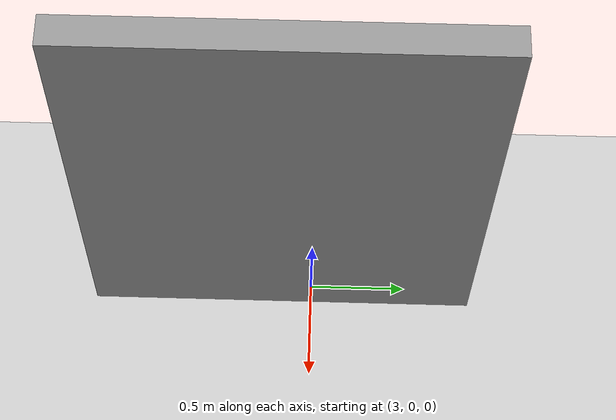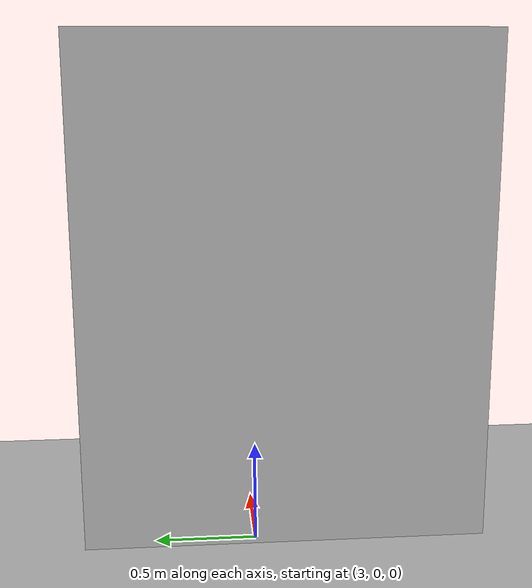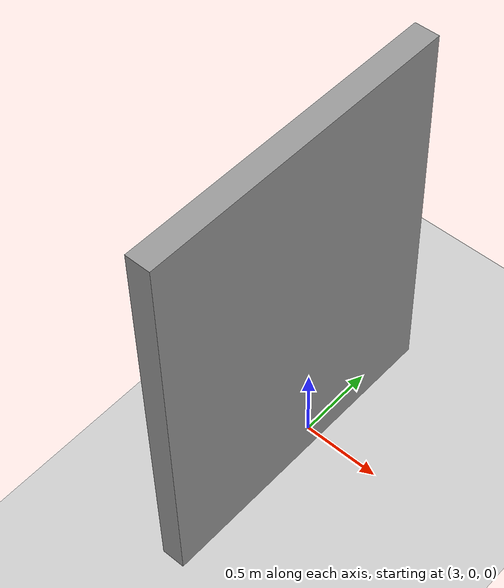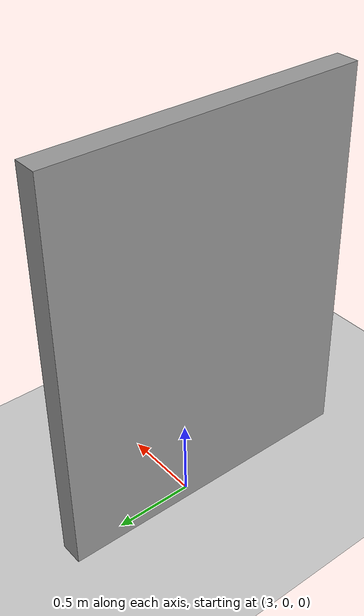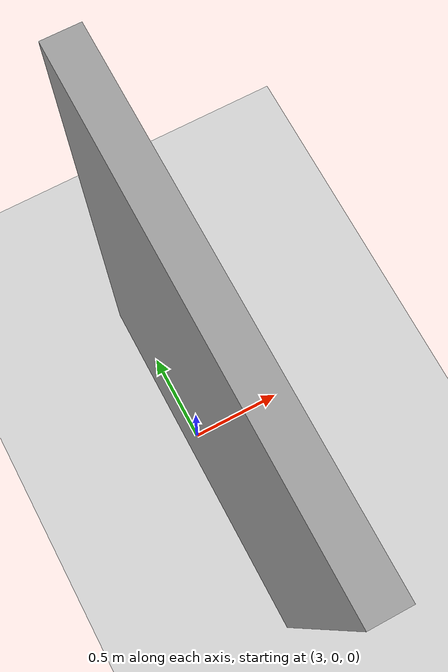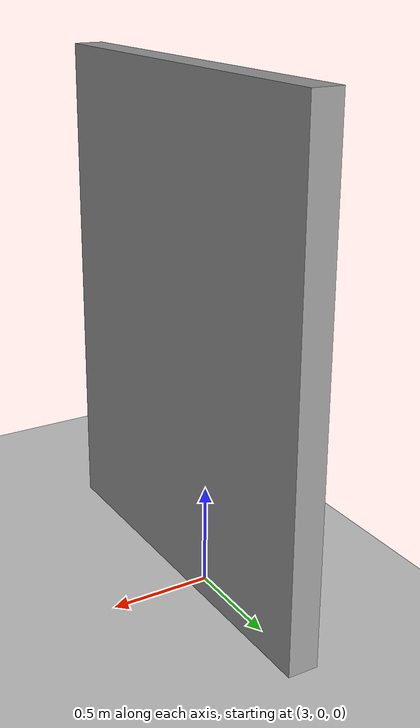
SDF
<sdf version="1.4">
  <world name="turtlebot3_wall">

    <scene>
      <ambient>0.4 0.4 0.4 1</ambient>
      <background>0.7 0.7 0.7 1</background>
      <shadows>true</shadows>
    </scene>

    <!-- A global light source -->
    <include>
      <uri>model://sun</uri>
    </include>

    <!-- A ground plane -->
    <include>
      <uri>model://ground_plane</uri>
    </include>

    <physics type="ode">
      <real_time_update_rate>1000.0</real_time_update_rate>
      <max_step_size>0.001</max_step_size>
      <real_time_factor>1</real_time_factor>
      <ode>
        <solver>
          <type>quick</type>
          <iters>150</iters>
          <precon_iters>0</precon_iters>
          <sor>1.400000</sor>
          <use_dynamic_moi_rescaling>1</use_dynamic_moi_rescaling>
        </solver>
        <constraints>
          <cfm>0.00001</cfm>
          <erp>0.2</erp>
          <contact_max_correcting_vel>2000.000000</contact_max_correcting_vel>
          <contact_surface_layer>0.01000</contact_surface_layer>
        </constraints>
      </ode>
    </physics>
    <model name='turtlebot3_wall.world'>
    <pose>1.5425 -0.155 0 0 -0 0</pose>
    <link name='Wall_0'>
      <collision name='Wall_0_Collision'>
        <geometry>
          <box>
            <size>2 0.15 2.5</size>
          </box>
        </geometry>
        <pose>0 0 1.25 0 -0 0</pose>
      </collision>
      <visual name='Wall_0_Visual'>
        <pose>0 0 1.25 0 -0 0</pose>
        <geometry>
          <box>
            <size>2 0.15 2.5</size>
          </box>
        </geometry>
        <material>
          <script>
            <uri>file://media/materials/scripts/gazebo.material</uri>
            <name>Gazebo/Grey</name>
          </script>
          <ambient>1 1 1 1</ambient>
        </material>
        <meta>
          <layer>0</layer>
        </meta>
      </visual>
      <pose>1.4675 -0 0 0 -0 1.5708</pose>
    </link>
    <static>1</static>
  </model>
  </world>
</sdf><sdf version="1.4">
  <world name="turtlebot3_wall">

    <scene>
      <ambient>0.4 0.4 0.4 1</ambient>
      <background>0.7 0.7 0.7 1</background>
      <shadows>true</shadows>
    </scene>

    <!-- A global light source -->
    <include>
      <uri>model://sun</uri>
    </include>

    <!-- A ground plane -->
    <include>
      <uri>model://ground_plane</uri>
    </include>

    <physics type="ode">
      <real_time_update_rate>1000.0</real_time_update_rate>
      <max_step_size>0.001</max_step_size>
      <real_time_factor>1</real_time_factor>
      <ode>
        <solver>
          <type>quick</type>
          <iters>150</iters>
          <precon_iters>0</precon_iters>
          <sor>1.400000</sor>
          <use_dynamic_moi_rescaling>1</use_dynamic_moi_rescaling>
        </solver>
        <constraints>
          <cfm>0.00001</cfm>
          <erp>0.2</erp>
          <contact_max_correcting_vel>2000.000000</contact_max_correcting_vel>
          <contact_surface_layer>0.01000</contact_surface_layer>
        </constraints>
      </ode>
    </physics>
    <model name='turtlebot3_wall.world'>
    <pose>1.5425 -0.155 0 0 -0 0</pose>
    <link name='Wall_0'>
      <collision name='Wall_0_Collision'>
        <geometry>
          <box>
            <size>2 0.15 2.5</size>
          </box>
        </geometry>
        <pose>0 0 1.25 0 -0 0</pose>
      </collision>
      <visual name='Wall_0_Visual'>
        <pose>0 0 1.25 0 -0 0</pose>
        <geometry>
          <box>
            <size>2 0.15 2.5</size>
          </box>
        </geometry>
        <material>
          <script><sdf version="1.4">
  <world name="turtlebot3_wall">

    <scene>
      <ambient>0.4 0.4 0.4 1</ambient>
      <background>0.7 0.7 0.7 1</background>
      <shadows>true</shadows>
    </scene>

    <!-- A global light source -->
    <include>
      <uri>model://sun</uri>
    </include>

    <!-- A ground plane -->
    <include>
      <uri>model://ground_plane</uri>
    </include>

    <physics type="ode">
      <real_time_update_rate>1000.0</real_time_update_rate>
      <max_step_size>0.001</max_step_size>
      <real_time_factor>1</real_time_factor>
      <ode>
        <solver>
          <type>quick</type>
          <iters>150</iters>
          <precon_iters>0</precon_iters>
          <sor>1.400000</sor>
          <use_dynamic_moi_rescaling>1</use_dynamic_moi_rescaling>
        </solver>
        <constraints>
          <cfm>0.00001</cfm>
          <erp>0.2</erp>
          <contact_max_correcting_vel>2000.000000</contact_max_correcting_vel>
          <contact_surface_layer>0.01000</contact_surface_layer>
        </constraints>
      </ode>
    </physics>
    <model name='turtlebot3_wall.world'>
    <pose>1.5425 -0.155 0 0 -0 0</pose>
    <link name='Wall_0'>
      <collision name='Wall_0_Collision'>
        <geometry>
          <box>
            <size>2 0.15 2.5</size>
          </box>
        </geometry>
        <pose>0 0 1.25 0 -0 0</pose>
      </collision>
      <visual name='Wall_0_Visual'>
        <pose>0 0 1.25 0 -0 0</pose>
        <geometry>
          <box>
            <size>2 0.15 2.5</size>
          </box>
        </geometry>
        <material>
          <script>
            <uri>file://media/materials/scripts/gazebo.material</uri>
            <name>Gazebo/Grey</name>
          </script>
          <ambient>1 1 1 1</ambient>
        </material>
        <meta>
          <layer>0</layer>
        </meta>
      </visual>
      <pose>1.4675 -0 0 0 -0 1.5708</pose>
    </link>
    <static>1</static>
  </model>
  </world>
</sdf>
            <uri>file://media/materials/scripts/gazebo.material</uri>
            <name>Gazebo/Grey</name>
          </script>
          <ambient>1 1 1 1</ambient>
        </material>
        <meta>
          <layer>0</layer>
        </meta>
      </visual>
      <pose>1.4675 -0 0 0 -0 1.5708</pose>
    </link>
    <static>1</static>
  </model>
  </world>
</sdf>
